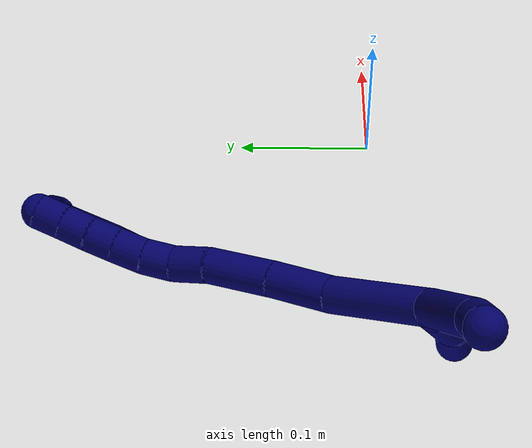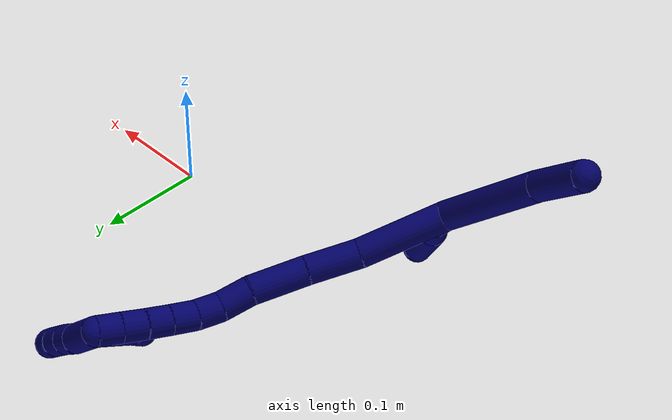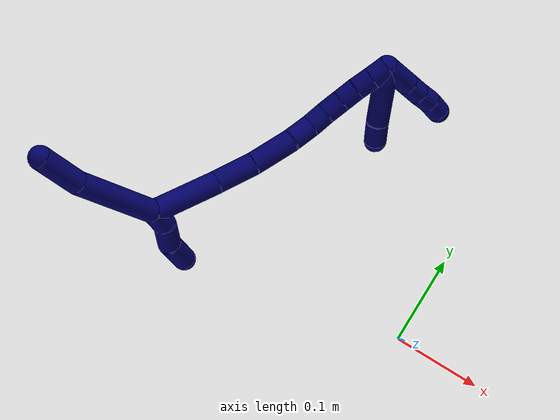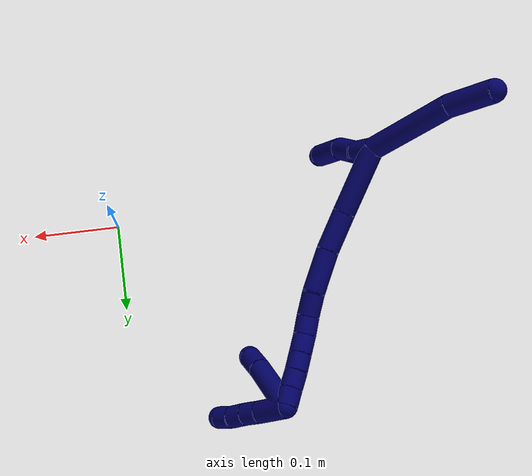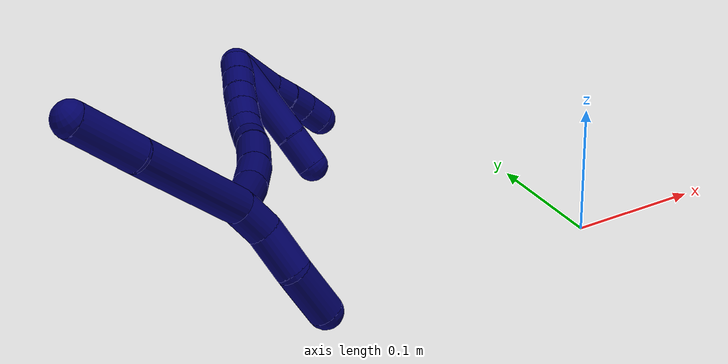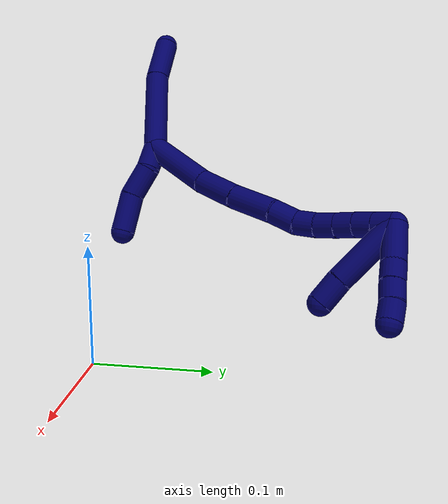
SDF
<sdf version="1.7">
 <world name="default">
  <model name="7">
   <static>0</static>
   <link name="7">
    <collision name="collision-cylinder-e_1_2_8">
     <pose>-0.012768 -0.017073 0.044539 0.36605 -0.26155 -0.04868</pose>
     <geometry><cylinder><radius>0.0125</radius><length>0.098758</length></cylinder></geometry>
     <surface>
      <friction><ode><mu>1.16</mu><mu2>1.16</mu2><slip1>0</slip1><slip2>0</slip2></ode></friction>
      <contact><ode><kp>1e+06</kp><kd>1</kd><max_vel>0</max_vel><min_depth>0.001</min_depth></ode></contact>
     </surface>
    </collision>
    <visual name="visual-cylinder-e_1_2_8">
     <pose>-0.012768 -0.017073 0.044539 0.36605 -0.26155 -0.04868</pose>
     <geometry><cylinder><radius>0.0125</radius><length>0.098758</length></cylinder></geometry>
     <material><ambient>0.003922 0 0.403922 1</ambient></material>
    </visual>
    <collision name="collision-cylinder-e_2_8_6">
     <pose>-0.033824 -0.03847 0.112934 0.179316 -0.329382 -0.029879</pose>
     <geometry><cylinder><radius>0.0125</radius><length>0.051242</length></cylinder></geometry>
     <surface>
      <friction><ode><mu>1.16</mu><mu2>1.16</mu2><slip1>0</slip1><slip2>0</slip2></ode></friction>
      <contact><ode><kp>1e+06</kp><kd>1</kd><max_vel>0</max_vel><min_depth>0.001</min_depth></ode></contact>
     </surface>
    </collision>
    <visual name="visual-cylinder-e_2_8_6">
     <pose>-0.033824 -0.03847 0.112934 0.179316 -0.329382 -0.029879</pose>
     <geometry><cylinder><radius>0.0125</radius><length>0.051242</length></cylinder></geometry>
     <material><ambient>0.003922 0 0.403922 1</ambient></material>
    </visual>
    <collision name="collision-cylinder-e_1_2_9">
     <pose>0.001964 -0.000275 -0.012548 3.11965 0.15526 2.86134</pose>
     <geometry><cylinder><radius>0.0125</radius><length>0.025407</length></cylinder></geometry>
     <surface>
      <friction><ode><mu>1.16</mu><mu2>1.16</mu2><slip1>0</slip1><slip2>0</slip2></ode></friction>
      <contact><ode><kp>1e+06</kp><kd>1</kd><max_vel>0</max_vel><min_depth>0.001</min_depth></ode></contact>
     </surface>
    </collision>
    <visual name="visual-cylinder-e_1_2_9">
     <pose>0.001964 -0.000275 -0.012548 3.11965 0.15526 2.86134</pose>
     <geometry><cylinder><radius>0.0125</radius><length>0.025407</length></cylinder></geometry>
     <material><ambient>0.003922 0 0.403922 1</ambient></material>
    </visual>
    <collision name="collision-cylinder-e_2_9_10">
     <pose>0.004319 -0.006002 -0.041059 2.81255 0.023147 0.139199</pose>
     <geometry><cylinder><radius>0.0125</radius><length>0.033746</length></cylinder></geometry>
     <surface>
      <friction><ode><mu>1.16</mu><mu2>1.16</mu2><slip1>0</slip1><slip2>0</slip2></ode></friction>
      <contact><ode><kp>1e+06</kp><kd>1</kd><max_vel>0</max_vel><min_depth>0.001</min_depth></ode></contact>
     </surface>
    </collision>
    <visual name="visual-cylinder-e_2_9_10">
     <pose>0.004319 -0.006002 -0.041059 2.81255 0.023147 0.139199</pose>
     <geometry><cylinder><radius>0.0125</radius><length>0.033746</length></cylinder></geometry>
     <material><ambient>0.003922 0 0.403922 1</ambient></material>
    </visual>
    <collision name="collision-cylinder-e_3_10_5">
     <pose>0.005038 -0.011504 -0.077443 3.13908 0.016061 2.83174</pose>
     <geometry><cylinder><radius>0.0125</radius><length>0.040847</length></cylinder></geometry>
     <surface>
      <friction><ode><mu>1.16</mu><mu2>1.16</mu2><slip1>0</slip1><slip2>0</slip2></ode></friction>
      <contact><ode><kp>1e+06</kp><kd>1</kd><max_vel>0</max_vel><min_depth>0.001</min_depth></ode></contact>
     </surface>
    </collision>
    <visual name="visual-cylinder-e_3_10_5">
     <pose>0.005038 -0.011504 -0.077443 3.13908 0.016061 2.83174</pose>
     <geometry><cylinder><radius>0.0125</radius><length>0.040847</length></cylinder></geometry>
     <material><ambient>0.003922 0 0.403922 1</ambient></material>
    </visual>
    <collision name="collision-cylinder-e_1_2_11">
     <pose>0.00238 0.034055 -0.016425 -2.0202 0.062853 -0.100047</pose>
     <geometry><cylinder><radius>0.0125</radius><length>0.075769</length></cylinder></geometry>
     <surface>
      <friction><ode><mu>1.16</mu><mu2>1.16</mu2><slip1>0</slip1><slip2>0</slip2></ode></friction>
      <contact><ode><kp>1e+06</kp><kd>1</kd><max_vel>0</max_vel><min_depth>0.001</min_depth></ode></contact>
     </surface>
    </collision>
    <visual name="visual-cylinder-e_1_2_11">
     <pose>0.00238 0.034055 -0.016425 -2.0202 0.062853 -0.100047</pose>
     <geometry><cylinder><radius>0.0125</radius><length>0.075769</length></cylinder></geometry>
     <material><ambient>0.003922 0 0.403922 1</ambient></material>
    </visual>
    <collision name="collision-cylinder-e_2_11_12">
     <pose>0.00784 0.089321 -0.039583 -1.87815 0.137548 -0.187714</pose>
     <geometry><cylinder><radius>0.0125</radius><length>0.044931</length></cylinder></geometry>
     <surface>
      <friction><ode><mu>1.16</mu><mu2>1.16</mu2><slip1>0</slip1><slip2>0</slip2></ode></friction>
      <contact><ode><kp>1e+06</kp><kd>1</kd><max_vel>0</max_vel><min_depth>0.001</min_depth></ode></contact>
     </surface>
    </collision>
    <visual name="visual-cylinder-e_2_11_12">
     <pose>0.00784 0.089321 -0.039583 -1.87815 0.137548 -0.187714</pose>
     <geometry><cylinder><radius>0.0125</radius><length>0.044931</length></cylinder></geometry>
     <material><ambient>0.003922 0 0.403922 1</ambient></material>
    </visual>
    <collision name="collision-cylinder-e_3_12_13">
     <pose>0.012886 0.133927 -0.051819 -1.80184 0.081643 -0.103044</pose>
     <geometry><cylinder><radius>0.0125</radius><length>0.048228</length></cylinder></geometry>
     <surface>
      <friction><ode><mu>1.16</mu><mu2>1.16</mu2><slip1>0</slip1><slip2>0</slip2></ode></friction>
      <contact><ode><kp>1e+06</kp><kd>1</kd><max_vel>0</max_vel><min_depth>0.001</min_depth></ode></contact>
     </surface>
    </collision>
    <visual name="visual-cylinder-e_3_12_13">
     <pose>0.012886 0.133927 -0.051819 -1.80184 0.081643 -0.103044</pose>
     <geometry><cylinder><radius>0.0125</radius><length>0.048228</length></cylinder></geometry>
     <material><ambient>0.003922 0 0.403922 1</ambient></material>
    </visual>
    <collision name="collision-cylinder-e_4_13_14">
     <pose>0.014053 0.17034 -0.061245 -1.86341 -0.058791 0.079094</pose>
     <geometry><cylinder><radius>0.0125</radius><length>0.027238</length></cylinder></geometry>
     <surface>
      <friction><ode><mu>1.16</mu><mu2>1.16</mu2><slip1>0</slip1><slip2>0</slip2></ode></friction>
      <contact><ode><kp>1e+06</kp><kd>1</kd><max_vel>0</max_vel><min_depth>0.001</min_depth></ode></contact>
     </surface>
    </collision>
    <visual name="visual-cylinder-e_4_13_14">
     <pose>0.014053 0.17034 -0.061245 -1.86341 -0.058791 0.079094</pose>
     <geometry><cylinder><radius>0.0125</radius><length>0.027238</length></cylinder></geometry>
     <material><ambient>0.003922 0 0.403922 1</ambient></material>
    </visual>
    <collision name="collision-cylinder-e_5_14_15">
     <pose>0.01379 0.194325 -0.065342 -1.58676 0.048988 -0.049776</pose>
     <geometry><cylinder><radius>0.0125</radius><length>0.021964</length></cylinder></geometry>
     <surface>
      <friction><ode><mu>1.16</mu><mu2>1.16</mu2><slip1>0</slip1><slip2>0</slip2></ode></friction>
      <contact><ode><kp>1e+06</kp><kd>1</kd><max_vel>0</max_vel><min_depth>0.001</min_depth></ode></contact>
     </surface>
    </collision>
    <visual name="visual-cylinder-e_5_14_15">
     <pose>0.01379 0.194325 -0.065342 -1.58676 0.048988 -0.049776</pose>
     <geometry><cylinder><radius>0.0125</radius><length>0.021964</length></cylinder></geometry>
     <material><ambient>0.003922 0 0.403922 1</ambient></material>
    </visual>
    <collision name="collision-cylinder-e_6_15_16">
     <pose>0.01612 0.215967 -0.064634 -1.48826 0.165799 -0.152703</pose>
     <geometry><cylinder><radius>0.0125</radius><length>0.021721</length></cylinder></geometry>
     <surface>
      <friction><ode><mu>1.16</mu><mu2>1.16</mu2><slip1>0</slip1><slip2>0</slip2></ode></friction>
      <contact><ode><kp>1e+06</kp><kd>1</kd><max_vel>0</max_vel><min_depth>0.001</min_depth></ode></contact>
     </surface>
    </collision>
    <visual name="visual-cylinder-e_6_15_16">
     <pose>0.01612 0.215967 -0.064634 -1.48826 0.165799 -0.152703</pose>
     <geometry><cylinder><radius>0.0125</radius><length>0.021721</length></cylinder></geometry>
     <material><ambient>0.003922 0 0.403922 1</ambient></material>
    </visual>
    <collision name="collision-cylinder-e_7_16_17">
     <pose>0.019671 0.236461 -0.062697 -1.46396 0.176157 -0.158354</pose>
     <geometry><cylinder><radius>0.0125</radius><length>0.020061</length></cylinder></geometry>
     <surface>
      <friction><ode><mu>1.16</mu><mu2>1.16</mu2><slip1>0</slip1><slip2>0</slip2></ode></friction>
      <contact><ode><kp>1e+06</kp><kd>1</kd><max_vel>0</max_vel><min_depth>0.001</min_depth></ode></contact>
     </surface>
    </collision>
    <visual name="visual-cylinder-e_7_16_17">
     <pose>0.019671 0.236461 -0.062697 -1.46396 0.176157 -0.158354</pose>
     <geometry><cylinder><radius>0.0125</radius><length>0.020061</length></cylinder></geometry>
     <material><ambient>0.003922 0 0.403922 1</ambient></material>
    </visual>
    <collision name="collision-cylinder-e_8_17_18">
     <pose>0.023556 0.25604 -0.061064 -1.51144 0.214253 -0.201986</pose>
     <geometry><cylinder><radius>0.0125</radius><length>0.020013</length></cylinder></geometry>
     <surface>
      <friction><ode><mu>1.16</mu><mu2>1.16</mu2><slip1>0</slip1><slip2>0</slip2></ode></friction>
      <contact><ode><kp>1e+06</kp><kd>1</kd><max_vel>0</max_vel><min_depth>0.001</min_depth></ode></contact>
     </surface>
    </collision>
    <visual name="visual-cylinder-e_8_17_18">
     <pose>0.023556 0.25604 -0.061064 -1.51144 0.214253 -0.201986</pose>
     <geometry><cylinder><radius>0.0125</radius><length>0.020013</length></cylinder></geometry>
     <material><ambient>0.003922 0 0.403922 1</ambient></material>
    </visual>
    <collision name="collision-cylinder-e_9_18_1">
     <pose>0.027678 0.275601 -0.059629 -1.48369 0.199981 -0.183375</pose>
     <geometry><cylinder><radius>0.0125</radius><length>0.020076</length></cylinder></geometry>
     <surface>
      <friction><ode><mu>1.16</mu><mu2>1.16</mu2><slip1>0</slip1><slip2>0</slip2></ode></friction>
      <contact><ode><kp>1e+06</kp><kd>1</kd><max_vel>0</max_vel><min_depth>0.001</min_depth></ode></contact>
     </surface>
    </collision>
    <visual name="visual-cylinder-e_9_18_1">
     <pose>0.027678 0.275601 -0.059629 -1.48369 0.199981 -0.183375</pose>
     <geometry><cylinder><radius>0.0125</radius><length>0.020076</length></cylinder></geometry>
     <material><ambient>0.003922 0 0.403922 1</ambient></material>
    </visual>
    <collision name="collision-cylinder-e_1_1_19">
     <pose>0.034564 0.28936 -0.077654 -2.93491 0.248374 -1.75507</pose>
     <geometry><cylinder><radius>0.0125</radius><length>0.039805</length></cylinder></geometry>
     <surface>
      <friction><ode><mu>1.16</mu><mu2>1.16</mu2><slip1>0</slip1><slip2>0</slip2></ode></friction>
      <contact><ode><kp>1e+06</kp><kd>1</kd><max_vel>0</max_vel><min_depth>0.001</min_depth></ode></contact>
     </surface>
    </collision>
    <visual name="visual-cylinder-e_1_1_19">
     <pose>0.034564 0.28936 -0.077654 -2.93491 0.248374 -1.75507</pose>
     <geometry><cylinder><radius>0.0125</radius><length>0.039805</length></cylinder></geometry>
     <material><ambient>0.003922 0 0.403922 1</ambient></material>
    </visual>
    <collision name="collision-cylinder-e_2_19_20">
     <pose>0.042911 0.295186 -0.105806 -2.9429 0.350234 -2.11549</pose>
     <geometry><cylinder><radius>0.0125</radius><length>0.020136</length></cylinder></geometry>
     <surface>
      <friction><ode><mu>1.16</mu><mu2>1.16</mu2><slip1>0</slip1><slip2>0</slip2></ode></friction>
      <contact><ode><kp>1e+06</kp><kd>1</kd><max_vel>0</max_vel><min_depth>0.001</min_depth></ode></contact>
     </surface>
    </collision>
    <visual name="visual-cylinder-e_2_19_20">
     <pose>0.042911 0.295186 -0.105806 -2.9429 0.350234 -2.11549</pose>
     <geometry><cylinder><radius>0.0125</radius><length>0.020136</length></cylinder></geometry>
     <material><ambient>0.003922 0 0.403922 1</ambient></material>
    </visual>
    <collision name="collision-cylinder-e_3_20_21">
     <pose>0.049336 0.2994 -0.124351 -2.89372 0.301001 -1.7662</pose>
     <geometry><cylinder><radius>0.0125</radius><length>0.020034</length></cylinder></geometry>
     <surface>
      <friction><ode><mu>1.16</mu><mu2>1.16</mu2><slip1>0</slip1><slip2>0</slip2></ode></friction>
      <contact><ode><kp>1e+06</kp><kd>1</kd><max_vel>0</max_vel><min_depth>0.001</min_depth></ode></contact>
     </surface>
    </collision>
    <visual name="visual-cylinder-e_3_20_21">
     <pose>0.049336 0.2994 -0.124351 -2.89372 0.301001 -1.7662</pose>
     <geometry><cylinder><radius>0.0125</radius><length>0.020034</length></cylinder></geometry>
     <material><ambient>0.003922 0 0.403922 1</ambient></material>
    </visual>
    <collision name="collision-cylinder-e_4_21_4">
     <pose>0.055102 0.302646 -0.143197 -3.04792 0.283081 -2.50605</pose>
     <geometry><cylinder><radius>0.0125</radius><length>0.020025</length></cylinder></geometry>
     <surface>
      <friction><ode><mu>1.16</mu><mu2>1.16</mu2><slip1>0</slip1><slip2>0</slip2></ode></friction>
      <contact><ode><kp>1e+06</kp><kd>1</kd><max_vel>0</max_vel><min_depth>0.001</min_depth></ode></contact>
     </surface>
    </collision>
    <visual name="visual-cylinder-e_4_21_4">
     <pose>0.055102 0.302646 -0.143197 -3.04792 0.283081 -2.50605</pose>
     <geometry><cylinder><radius>0.0125</radius><length>0.020025</length></cylinder></geometry>
     <material><ambient>0.003922 0 0.403922 1</ambient></material>
    </visual>
    <collision name="collision-cylinder-e_1_1_22">
     <pose>0.032182 0.264871 -0.088448 2.53637 0.069448 0.221624</pose>
     <geometry><cylinder><radius>0.0125</radius><length>0.072344</length></cylinder></geometry>
     <surface>
      <friction><ode><mu>1.16</mu><mu2>1.16</mu2><slip1>0</slip1><slip2>0</slip2></ode></friction>
      <contact><ode><kp>1e+06</kp><kd>1</kd><max_vel>0</max_vel><min_depth>0.001</min_depth></ode></contact>
     </surface>
    </collision>
    <visual name="visual-cylinder-e_1_1_22">
     <pose>0.032182 0.264871 -0.088448 2.53637 0.069448 0.221624</pose>
     <geometry><cylinder><radius>0.0125</radius><length>0.072344</length></cylinder></geometry>
     <material><ambient>0.003922 0 0.403922 1</ambient></material>
    </visual>
    <collision name="collision-cylinder-e_2_22_3">
     <pose>0.035323 0.237502 -0.130125 2.62367 0.045682 0.172048</pose>
     <geometry><cylinder><radius>0.0125</radius><length>0.027656</length></cylinder></geometry>
     <surface>
      <friction><ode><mu>1.16</mu><mu2>1.16</mu2><slip1>0</slip1><slip2>0</slip2></ode></friction>
      <contact><ode><kp>1e+06</kp><kd>1</kd><max_vel>0</max_vel><min_depth>0.001</min_depth></ode></contact>
     </surface>
    </collision>
    <visual name="visual-cylinder-e_2_22_3">
     <pose>0.035323 0.237502 -0.130125 2.62367 0.045682 0.172048</pose>
     <geometry><cylinder><radius>0.0125</radius><length>0.027656</length></cylinder></geometry>
     <material><ambient>0.003922 0 0.403922 1</ambient></material>
    </visual>
    <collision name="collision-sphere-3">
     <pose>0.035955 0.230663 -0.142127 0 -0 0</pose>
     <geometry><sphere><radius>0.0125</radius></sphere></geometry>
     <surface>
      <friction><ode><mu>1.16</mu><mu2>1.16</mu2><slip1>0</slip1><slip2>0</slip2></ode></friction>
      <contact><ode><kp>1e+06</kp><kd>1</kd><max_vel>0</max_vel><min_depth>0.001</min_depth></ode></contact>
     </surface>
    </collision>
    <visual name="visual-sphere-3">
     <pose>0.035955 0.230663 -0.142127 0 -0 0</pose>
     <geometry><sphere><radius>0.0125</radius></sphere></geometry>
     <material><ambient>0.003922 0 0.403922 1</ambient></material>
    </visual>
    <collision name="collision-sphere-22">
     <pose>0.034692 0.244341 -0.118123 0 -0 0</pose>
     <geometry><sphere><radius>0.0125</radius></sphere></geometry>
     <surface>
      <friction><ode><mu>1.16</mu><mu2>1.16</mu2><slip1>0</slip1><slip2>0</slip2></ode></friction>
      <contact><ode><kp>1e+06</kp><kd>1</kd><max_vel>0</max_vel><min_depth>0.001</min_depth></ode></contact>
     </surface>
    </collision>
    <visual name="visual-sphere-22">
     <pose>0.034692 0.244341 -0.118123 0 -0 0</pose>
     <geometry><sphere><radius>0.0125</radius></sphere></geometry>
     <material><ambient>0.003922 0 0.403922 1</ambient></material>
    </visual>
    <collision name="collision-sphere-4">
     <pose>0.057899 0.303545 -0.152769 0 -0 0</pose>
     <geometry><sphere><radius>0.0125</radius></sphere></geometry>
     <surface>
      <friction><ode><mu>1.16</mu><mu2>1.16</mu2><slip1>0</slip1><slip2>0</slip2></ode></friction>
      <contact><ode><kp>1e+06</kp><kd>1</kd><max_vel>0</max_vel><min_depth>0.001</min_depth></ode></contact>
     </surface>
    </collision>
    <visual name="visual-sphere-4">
     <pose>0.057899 0.303545 -0.152769 0 -0 0</pose>
     <geometry><sphere><radius>0.0125</radius></sphere></geometry>
     <material><ambient>0.003922 0 0.403922 1</ambient></material>
    </visual>
    <collision name="collision-sphere-21">
     <pose>0.052305 0.301747 -0.133625 0 -0 0</pose>
     <geometry><sphere><radius>0.0125</radius></sphere></geometry>
     <surface>
      <friction><ode><mu>1.16</mu><mu2>1.16</mu2><slip1>0</slip1><slip2>0</slip2></ode></friction>
      <contact><ode><kp>1e+06</kp><kd>1</kd><max_vel>0</max_vel><min_depth>0.001</min_depth></ode></contact>
     </surface>
    </collision>
    <visual name="visual-sphere-21">
     <pose>0.052305 0.301747 -0.133625 0 -0 0</pose>
     <geometry><sphere><radius>0.0125</radius></sphere></geometry>
     <material><ambient>0.003922 0 0.403922 1</ambient></material>
    </visual>
    <collision name="collision-sphere-20">
     <pose>0.046366 0.297053 -0.115076 0 -0 0</pose>
     <geometry><sphere><radius>0.0125</radius></sphere></geometry>
     <surface>
      <friction><ode><mu>1.16</mu><mu2>1.16</mu2><slip1>0</slip1><slip2>0</slip2></ode></friction>
      <contact><ode><kp>1e+06</kp><kd>1</kd><max_vel>0</max_vel><min_depth>0.001</min_depth></ode></contact>
     </surface>
    </collision>
    <visual name="visual-sphere-20">
     <pose>0.046366 0.297053 -0.115076 0 -0 0</pose>
     <geometry><sphere><radius>0.0125</radius></sphere></geometry>
     <material><ambient>0.003922 0 0.403922 1</ambient></material>
    </visual>
    <collision name="collision-sphere-5">
     <pose>0.005366 -0.011555 -0.097864 0 -0 0</pose>
     <geometry><sphere><radius>0.0125</radius></sphere></geometry>
     <surface>
      <friction><ode><mu>1.16</mu><mu2>1.16</mu2><slip1>0</slip1><slip2>0</slip2></ode></friction>
      <contact><ode><kp>1e+06</kp><kd>1</kd><max_vel>0</max_vel><min_depth>0.001</min_depth></ode></contact>
     </surface>
    </collision>
    <visual name="visual-sphere-5">
     <pose>0.005366 -0.011555 -0.097864 0 -0 0</pose>
     <geometry><sphere><radius>0.0125</radius></sphere></geometry>
     <material><ambient>0.003922 0 0.403922 1</ambient></material>
    </visual>
    <collision name="collision-sphere-10">
     <pose>0.00471 -0.011452 -0.057023 0 -0 0</pose>
     <geometry><sphere><radius>0.0125</radius></sphere></geometry>
     <surface>
      <friction><ode><mu>1.16</mu><mu2>1.16</mu2><slip1>0</slip1><slip2>0</slip2></ode></friction>
      <contact><ode><kp>1e+06</kp><kd>1</kd><max_vel>0</max_vel><min_depth>0.001</min_depth></ode></contact>
     </surface>
    </collision>
    <visual name="visual-sphere-10">
     <pose>0.00471 -0.011452 -0.057023 0 -0 0</pose>
     <geometry><sphere><radius>0.0125</radius></sphere></geometry>
     <material><ambient>0.003922 0 0.403922 1</ambient></material>
    </visual>
    <collision name="collision-sphere-6">
     <pose>-0.042111 -0.042794 0.136789 0 -0 0</pose>
     <geometry><sphere><radius>0.0125</radius></sphere></geometry>
     <surface>
      <friction><ode><mu>1.16</mu><mu2>1.16</mu2><slip1>0</slip1><slip2>0</slip2></ode></friction>
      <contact><ode><kp>1e+06</kp><kd>1</kd><max_vel>0</max_vel><min_depth>0.001</min_depth></ode></contact>
     </surface>
    </collision>
    <visual name="visual-sphere-6">
     <pose>-0.042111 -0.042794 0.136789 0 -0 0</pose>
     <geometry><sphere><radius>0.0125</radius></sphere></geometry>
     <material><ambient>0.003922 0 0.403922 1</ambient></material>
    </visual>
    <collision name="collision-sphere-9">
     <pose>0.003929 -0.000551 -0.025096 0 -0 0</pose>
     <geometry><sphere><radius>0.0125</radius></sphere></geometry>
     <surface>
      <friction><ode><mu>1.16</mu><mu2>1.16</mu2><slip1>0</slip1><slip2>0</slip2></ode></friction>
      <contact><ode><kp>1e+06</kp><kd>1</kd><max_vel>0</max_vel><min_depth>0.001</min_depth></ode></contact>
     </surface>
    </collision>
    <visual name="visual-sphere-9">
     <pose>0.003929 -0.000551 -0.025096 0 -0 0</pose>
     <geometry><sphere><radius>0.0125</radius></sphere></geometry>
     <material><ambient>0.003922 0 0.403922 1</ambient></material>
    </visual>
    <collision name="collision-sphere-2">
     <geometry><sphere><radius>0.0125</radius></sphere></geometry>
     <surface>
      <friction><ode><mu>1.16</mu><mu2>1.16</mu2><slip1>0</slip1><slip2>0</slip2></ode></friction>
      <contact><ode><kp>1e+06</kp><kd>1</kd><max_vel>0</max_vel><min_depth>0.001</min_depth></ode></contact>
     </surface>
    </collision>
    <visual name="visual-sphere-2">
     <geometry><sphere><radius>0.0125</radius></sphere></geometry>
     <material><ambient>0.003922 0 0.403922 1</ambient></material>
    </visual>
    <collision name="collision-sphere-19">
     <pose>0.039457 0.293319 -0.096535 0 -0 0</pose>
     <geometry><sphere><radius>0.0125</radius></sphere></geometry>
     <surface>
      <friction><ode><mu>1.16</mu><mu2>1.16</mu2><slip1>0</slip1><slip2>0</slip2></ode></friction>
      <contact><ode><kp>1e+06</kp><kd>1</kd><max_vel>0</max_vel><min_depth>0.001</min_depth></ode></contact>
     </surface>
    </collision>
    <visual name="visual-sphere-19">
     <pose>0.039457 0.293319 -0.096535 0 -0 0</pose>
     <geometry><sphere><radius>0.0125</radius></sphere></geometry>
     <material><ambient>0.003922 0 0.403922 1</ambient></material>
    </visual>
    <collision name="collision-sphere-8">
     <pose>-0.025537 -0.034146 0.089079 0 -0 0</pose>
     <geometry><sphere><radius>0.0125</radius></sphere></geometry>
     <surface>
      <friction><ode><mu>1.16</mu><mu2>1.16</mu2><slip1>0</slip1><slip2>0</slip2></ode></friction>
      <contact><ode><kp>1e+06</kp><kd>1</kd><max_vel>0</max_vel><min_depth>0.001</min_depth></ode></contact>
     </surface>
    </collision>
    <visual name="visual-sphere-8">
     <pose>-0.025537 -0.034146 0.089079 0 -0 0</pose>
     <geometry><sphere><radius>0.0125</radius></sphere></geometry>
     <material><ambient>0.003922 0 0.403922 1</ambient></material>
    </visual>
    <collision name="collision-sphere-11">
     <pose>0.004759 0.068111 -0.032851 0 -0 0</pose>
     <geometry><sphere><radius>0.0125</radius></sphere></geometry>
     <surface>
      <friction><ode><mu>1.16</mu><mu2>1.16</mu2><slip1>0</slip1><slip2>0</slip2></ode></friction>
      <contact><ode><kp>1e+06</kp><kd>1</kd><max_vel>0</max_vel><min_depth>0.001</min_depth></ode></contact>
     </surface>
    </collision>
    <visual name="visual-sphere-11">
     <pose>0.004759 0.068111 -0.032851 0 -0 0</pose>
     <geometry><sphere><radius>0.0125</radius></sphere></geometry>
     <material><ambient>0.003922 0 0.403922 1</ambient></material>
    </visual>
    <collision name="collision-sphere-12">
     <pose>0.01092 0.110532 -0.046316 0 -0 0</pose>
     <geometry><sphere><radius>0.0125</radius></sphere></geometry>
     <surface>
      <friction><ode><mu>1.16</mu><mu2>1.16</mu2><slip1>0</slip1><slip2>0</slip2></ode></friction>
      <contact><ode><kp>1e+06</kp><kd>1</kd><max_vel>0</max_vel><min_depth>0.001</min_depth></ode></contact>
     </surface>
    </collision>
    <visual name="visual-sphere-12">
     <pose>0.01092 0.110532 -0.046316 0 -0 0</pose>
     <geometry><sphere><radius>0.0125</radius></sphere></geometry>
     <material><ambient>0.003922 0 0.403922 1</ambient></material>
    </visual>
    <collision name="collision-sphere-13">
     <pose>0.014853 0.157322 -0.057323 0 -0 0</pose>
     <geometry><sphere><radius>0.0125</radius></sphere></geometry>
     <surface>
      <friction><ode><mu>1.16</mu><mu2>1.16</mu2><slip1>0</slip1><slip2>0</slip2></ode></friction>
      <contact><ode><kp>1e+06</kp><kd>1</kd><max_vel>0</max_vel><min_depth>0.001</min_depth></ode></contact>
     </surface>
    </collision>
    <visual name="visual-sphere-13">
     <pose>0.014853 0.157322 -0.057323 0 -0 0</pose>
     <geometry><sphere><radius>0.0125</radius></sphere></geometry>
     <material><ambient>0.003922 0 0.403922 1</ambient></material>
    </visual>
    <collision name="collision-sphere-14">
     <pose>0.013253 0.183357 -0.065166 0 -0 0</pose>
     <geometry><sphere><radius>0.0125</radius></sphere></geometry>
     <surface>
      <friction><ode><mu>1.16</mu><mu2>1.16</mu2><slip1>0</slip1><slip2>0</slip2></ode></friction>
      <contact><ode><kp>1e+06</kp><kd>1</kd><max_vel>0</max_vel><min_depth>0.001</min_depth></ode></contact>
     </surface>
    </collision>
    <visual name="visual-sphere-14">
     <pose>0.013253 0.183357 -0.065166 0 -0 0</pose>
     <geometry><sphere><radius>0.0125</radius></sphere></geometry>
     <material><ambient>0.003922 0 0.403922 1</ambient></material>
    </visual>
    <collision name="collision-sphere-15">
     <pose>0.014328 0.205292 -0.065517 0 -0 0</pose>
     <geometry><sphere><radius>0.0125</radius></sphere></geometry>
     <surface>
      <friction><ode><mu>1.16</mu><mu2>1.16</mu2><slip1>0</slip1><slip2>0</slip2></ode></friction>
      <contact><ode><kp>1e+06</kp><kd>1</kd><max_vel>0</max_vel><min_depth>0.001</min_depth></ode></contact>
     </surface>
    </collision>
    <visual name="visual-sphere-15">
     <pose>0.014328 0.205292 -0.065517 0 -0 0</pose>
     <geometry><sphere><radius>0.0125</radius></sphere></geometry>
     <material><ambient>0.003922 0 0.403922 1</ambient></material>
    </visual>
    <collision name="collision-sphere-16">
     <pose>0.017913 0.226642 -0.06375 0 -0 0</pose>
     <geometry><sphere><radius>0.0125</radius></sphere></geometry>
     <surface>
      <friction><ode><mu>1.16</mu><mu2>1.16</mu2><slip1>0</slip1><slip2>0</slip2></ode></friction>
      <contact><ode><kp>1e+06</kp><kd>1</kd><max_vel>0</max_vel><min_depth>0.001</min_depth></ode></contact>
     </surface>
    </collision>
    <visual name="visual-sphere-16">
     <pose>0.017913 0.226642 -0.06375 0 -0 0</pose>
     <geometry><sphere><radius>0.0125</radius></sphere></geometry>
     <material><ambient>0.003922 0 0.403922 1</ambient></material>
    </visual>
    <collision name="collision-sphere-17">
     <pose>0.021429 0.24628 -0.061644 0 -0 0</pose>
     <geometry><sphere><radius>0.0125</radius></sphere></geometry>
     <surface>
      <friction><ode><mu>1.16</mu><mu2>1.16</mu2><slip1>0</slip1><slip2>0</slip2></ode></friction>
      <contact><ode><kp>1e+06</kp><kd>1</kd><max_vel>0</max_vel><min_depth>0.001</min_depth></ode></contact>
     </surface>
    </collision>
    <visual name="visual-sphere-17">
     <pose>0.021429 0.24628 -0.061644 0 -0 0</pose>
     <geometry><sphere><radius>0.0125</radius></sphere></geometry>
     <material><ambient>0.003922 0 0.403922 1</ambient></material>
    </visual>
    <collision name="collision-sphere-18">
     <pose>0.025684 0.265801 -0.060484 0 -0 0</pose>
     <geometry><sphere><radius>0.0125</radius></sphere></geometry>
     <surface>
      <friction><ode><mu>1.16</mu><mu2>1.16</mu2><slip1>0</slip1><slip2>0</slip2></ode></friction>
      <contact><ode><kp>1e+06</kp><kd>1</kd><max_vel>0</max_vel><min_depth>0.001</min_depth></ode></contact>
     </surface>
    </collision>
    <visual name="visual-sphere-18">
     <pose>0.025684 0.265801 -0.060484 0 -0 0</pose>
     <geometry><sphere><radius>0.0125</radius></sphere></geometry>
     <material><ambient>0.003922 0 0.403922 1</ambient></material>
    </visual>
    <collision name="collision-sphere-1">
     <pose>0.029672 0.285401 -0.058773 0 -0 0</pose>
     <geometry><sphere><radius>0.0125</radius></sphere></geometry>
     <surface>
      <friction><ode><mu>1.16</mu><mu2>1.16</mu2><slip1>0</slip1><slip2>0</slip2></ode></friction>
      <contact><ode><kp>1e+06</kp><kd>1</kd><max_vel>0</max_vel><min_depth>0.001</min_depth></ode></contact>
     </surface>
    </collision>
    <visual name="visual-sphere-1">
     <pose>0.029672 0.285401 -0.058773 0 -0 0</pose>
     <geometry><sphere><radius>0.0125</radius></sphere></geometry>
     <material><ambient>0.003922 0 0.403922 1</ambient></material>
    </visual>
    <inertial>
     <pose>0.011541 0.123955 -0.038622 0 -0 0</pose>
     <mass>0.75</mass>
     <inertia>
      <ixx>0.000183</ixx>
      <ixy>0</ixy>
      <ixz>0</ixz>
      <iyy>5.4e-05</iyy>
      <iyz>0</iyz>
      <izz>-1.5e-05</izz>
     </inertia>
    </inertial>
   </link>
   <pose>-0.292763 -0.022503 0.119726 -0.005073 -0.508557 -0.261404</pose>
  </model>
 </world>
</sdf>
